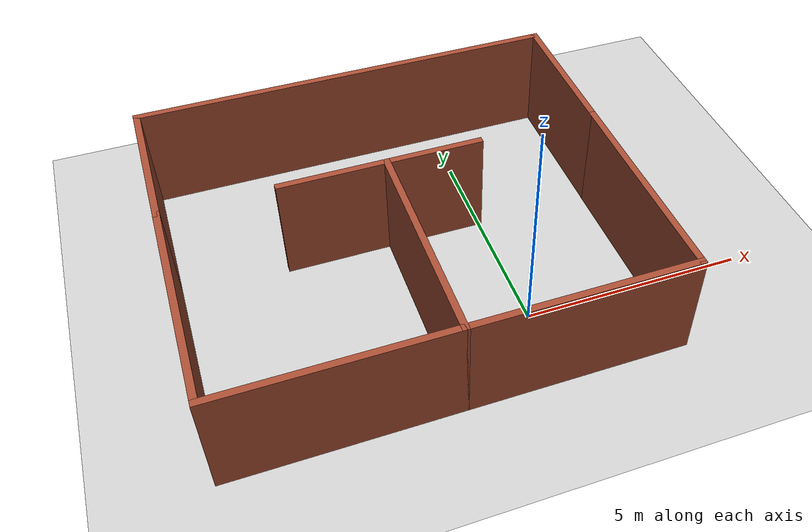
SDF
<sdf version="1.6">
 <world name="default">
  <light name="sun" type="directional">
   <pose>0 0 10 0 -0 0</pose>
   <diffuse>0.8 0.8 0.8 1</diffuse>
   <specular>0.1 0.1 0.1 1</specular>
   <attenuation>
    <range>1000</range>
    <constant>0.9</constant>
    <linear>0.01</linear>
    <quadratic>0.001</quadratic>
   </attenuation>
   <direction>-0.5 0.5 -1</direction>
  </light>
  <model name="ground_plane">
   <static>1</static>
   <link name="link">
    <collision name="collision">
     <geometry><plane><normal>0 0 1</normal><size>100 100</size></plane></geometry>
     <surface><friction><ode><mu>100</mu><mu2>50</mu2></ode></friction></surface>
    </collision>
    <visual name="visual">
     <cast_shadows>0</cast_shadows>
     <geometry><plane><normal>0 0 1</normal><size>100 100</size></plane></geometry>
     <material>
      <script><uri>file://media/materials/scripts/gazebo.material</uri><name>Gazebo/Grey</name></script>
     </material>
    </visual>
   </link>
  </model>
  <gravity>0 0 -9.8</gravity>
  <magnetic_field>6e-06 2.3e-05 -4.2e-05</magnetic_field>
  <atmosphere type="adiabatic"/>
  <physics name="default_physics" default="0" type="ode">
   <max_step_size>0.004</max_step_size>
   <real_time_factor>1</real_time_factor>
   <real_time_update_rate>250</real_time_update_rate>
  </physics>
  <scene><ambient>0.4 0.4 0.4 1</ambient><background>0.7 0.7 0.7 1</background><shadows>1</shadows></scene>
  <spherical_coordinates>
   <surface_model>EARTH_WGS84</surface_model>
   <latitude_deg>0</latitude_deg>
   <longitude_deg>0</longitude_deg>
   <elevation>0</elevation>
   <heading_deg>0</heading_deg>
  </spherical_coordinates>
  <model name="room">
   <pose>-2.10802 2.34097 0 0 -0 0</pose>
   <link name="Wall_23">
    <collision name="Wall_23_Collision">
     <geometry><box><size>5 0.15 2.5</size></box></geometry>
     <pose>0 0 1.25 0 -0 0</pose>
    </collision>
    <visual name="Wall_23_Visual">
     <pose>0 0 1.25 0 -0 0</pose>
     <geometry><box><size>5 0.15 2.5</size></box></geometry>
     <material>
      <script><uri>file://media/materials/scripts/gazebo.material</uri><name>Gazebo/Bricks</name></script>
      <ambient>1 1 1 1</ambient>
     </material>
    </visual>
    <pose>-4.85 -1.675 0 0 0 -1.5708</pose>
   </link>
   <link name="Wall_24">
    <collision name="Wall_24_Collision">
     <geometry><box><size>5 0.15 2.5</size></box></geometry>
     <pose>0 0 1.25 0 -0 0</pose>
    </collision>
    <visual name="Wall_24_Visual">
     <pose>0 0 1.25 0 -0 0</pose>
     <geometry><box><size>5 0.15 2.5</size></box></geometry>
     <material>
      <script><uri>file://media/materials/scripts/gazebo.material</uri><name>Gazebo/Bricks</name></script>
      <ambient>1 1 1 1</ambient>
     </material>
    </visual>
    <pose>-2.425 -4.1 0 0 -0 0</pose>
   </link>
   <link name="Wall_27">
    <collision name="Wall_27_Collision">
     <geometry><box><size>5 0.15 2.5</size></box></geometry>
     <pose>0 0 1.25 0 -0 0</pose>
    </collision>
    <visual name="Wall_27_Visual">
     <pose>0 0 1.25 0 -0 0</pose>
     <geometry><box><size>5 0.15 2.5</size></box></geometry>
     <material>
      <script><uri>file://media/materials/scripts/gazebo.material</uri><name>Gazebo/Bricks</name></script>
      <ambient>1 1 1 1</ambient>
     </material>
    </visual>
    <pose>0 -1.675 0 0 0 -1.5708</pose>
   </link>
   <link name="Wall_30">
    <collision name="Wall_30_Collision">
     <geometry><box><size>5 0.15 2.5</size></box></geometry>
     <pose>0 0 1.25 0 -0 0</pose>
    </collision>
    <visual name="Wall_30_Visual">
     <pose>0 0 1.25 0 -0 0</pose>
     <geometry><box><size>5 0.15 2.5</size></box></geometry>
     <material>
      <script><uri>file://media/materials/scripts/gazebo.material</uri><name>Gazebo/Bricks</name></script>
      <ambient>1 1 1 1</ambient>
     </material>
    </visual>
    <pose>4.85 -1.675 0 0 0 -1.5708</pose>
   </link>
   <link name="Wall_31">
    <collision name="Wall_31_Collision">
     <geometry><box><size>5 0.15 2.5</size></box></geometry>
     <pose>0 0 1.25 0 -0 0</pose>
    </collision>
    <visual name="Wall_31_Visual">
     <pose>0 0 1.25 0 -0 0</pose>
     <geometry><box><size>5 0.15 2.5</size></box></geometry>
     <material>
      <script><uri>file://media/materials/scripts/gazebo.material</uri><name>Gazebo/Bricks</name></script>
      <ambient>1 1 1 1</ambient>
     </material>
    </visual>
    <pose>2.425 -4.1 0 0 -0 3.14159</pose>
   </link>
   <link name="Wall_36">
    <collision name="Wall_36_Collision">
     <geometry><box><size>3.5 0.15 2.5</size></box></geometry>
     <pose>0 0 1.25 0 -0 0</pose>
    </collision>
    <visual name="Wall_36_Visual">
     <pose>0 0 1.25 0 -0 0</pose>
     <geometry><box><size>3.5 0.15 2.5</size></box></geometry>
     <material>
      <script><uri>file://media/materials/scripts/gazebo.material</uri><name>Gazebo/Bricks</name></script>
      <ambient>1 1 1 1</ambient>
     </material>
    </visual>
    <pose>-4.85 2.425 0 0 -0 1.5708</pose>
   </link>
   <link name="Wall_37">
    <collision name="Wall_37_Collision">
     <geometry><box><size>9.75 0.15 2.5</size></box></geometry>
     <pose>0 0 1.25 0 -0 0</pose>
    </collision>
    <visual name="Wall_37_Visual">
     <pose>0 0 1.25 0 -0 0</pose>
     <geometry><box><size>9.75 0.15 2.5</size></box></geometry>
     <material>
      <script><uri>file://media/materials/scripts/gazebo.material</uri><name>Gazebo/Bricks</name></script>
      <ambient>1 1 1 1</ambient>
     </material>
    </visual>
    <pose>-0.05 4.1 0 0 -0 0</pose>
   </link>
   <link name="Wall_39">
    <collision name="Wall_39_Collision">
     <geometry><box><size>3.5 0.15 2.5</size></box></geometry>
     <pose>0 0 1.25 0 -0 0</pose>
    </collision>
    <visual name="Wall_39_Visual">
     <pose>0 0 1.25 0 -0 0</pose>
     <geometry><box><size>3.5 0.15 2.5</size></box></geometry>
     <material>
      <script><uri>file://media/materials/scripts/gazebo.material</uri><name>Gazebo/Bricks</name></script>
      <ambient>1 1 1 1</ambient>
     </material>
    </visual>
    <pose>4.85 2.425 0 0 -0 1.5708</pose>
   </link>
   <link name="Wall_41">
    <collision name="Wall_41_Collision">
     <geometry><box><size>2.25 0.15 2.5</size></box></geometry>
     <pose>0 0 1.25 0 -0 0</pose>
    </collision>
    <visual name="Wall_41_Visual">
     <pose>0 0 1.25 0 -0 0</pose>
     <geometry><box><size>2.25 0.15 2.5</size></box></geometry>
     <material>
      <script><uri>file://media/materials/scripts/gazebo.material</uri><name>Gazebo/Bricks</name></script>
      <ambient>1 1 1 1</ambient>
     </material>
    </visual>
    <pose>1.05 0.75 0 0 -0 0</pose>
   </link>
   <link name="Wall_43">
    <collision name="Wall_43_Collision">
     <geometry><box><size>2.5 0.15 2.5</size></box></geometry>
     <pose>0 0 1.25 0 -0 0</pose>
    </collision>
    <visual name="Wall_43_Visual">
     <pose>0 0 1.25 0 -0 0</pose>
     <geometry><box><size>2.5 0.15 2.5</size></box></geometry>
     <material>
      <script><uri>file://media/materials/scripts/gazebo.material</uri><name>Gazebo/Bricks</name></script>
      <ambient>1 1 1 1</ambient>
     </material>
    </visual>
    <pose>-1.175 0.75 0 0 -0 3.14159</pose>
   </link>
   <static>1</static>
  </model>
 </world>
</sdf>
